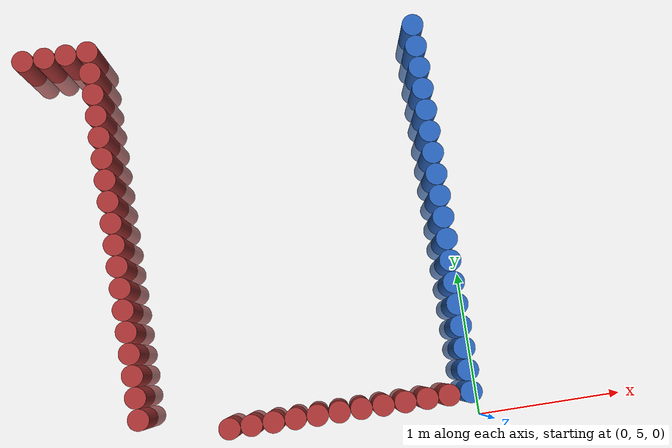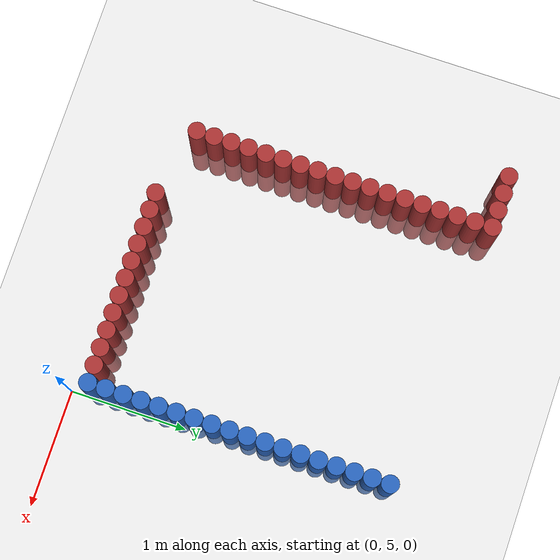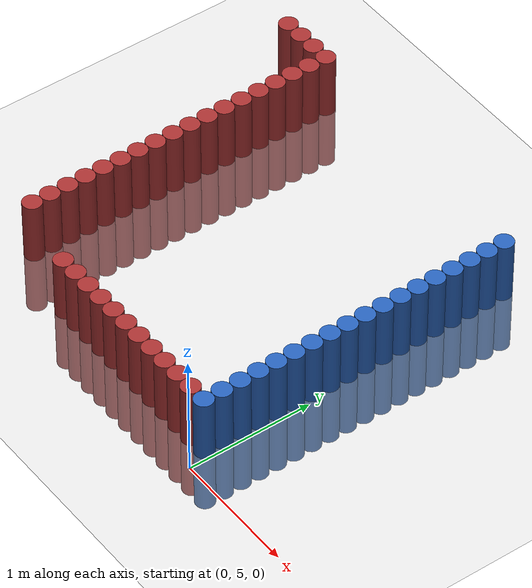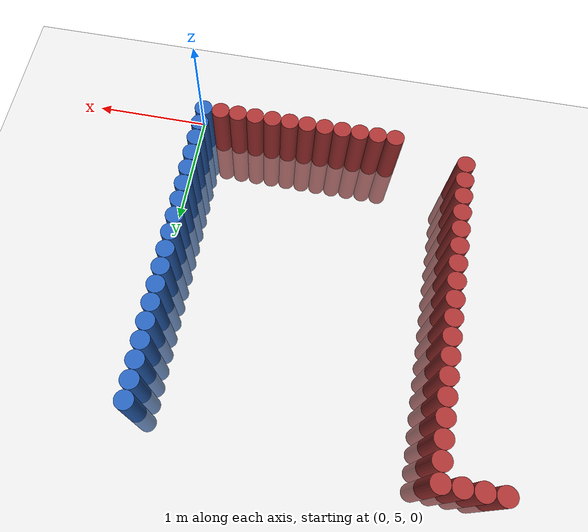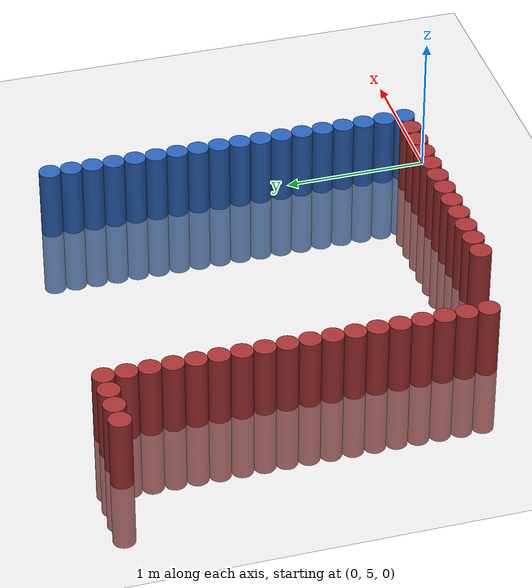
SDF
<sdf version="1.6">
 <world name="default">
  <model name="ground_plane">
   <static>1</static>
   <link name="link">
    <collision name="collision">
     <geometry><plane><normal>0 0 1</normal><size>100 100</size></plane></geometry>
     <surface><friction><ode><mu>100</mu><mu2>50</mu2></ode></friction></surface>
    </collision>
    <visual name="visual">
     <cast_shadows>0</cast_shadows>
     <geometry><plane><normal>0 0 1</normal><size>100 100</size></plane></geometry>
     <material>
      <script><uri>file://media/materials/scripts/gazebo.material</uri><name>Gazebo/Grey</name></script>
     </material>
    </visual>
   </link>
  </model>
  <model name="unit_cylinder_265">
   <static>1</static>
   <pose>-2.775000 7.875000 0.000000 0.000000 0.000000 0.000000</pose>
   <link name="link">
    <inertial>
     <mass>1</mass>
     <inertia><ixx>0.145833</ixx><ixy>0</ixy><ixz>0</ixz><iyy>0.145833</iyy><iyz>0</iyz><izz>0.125</izz></inertia>
    </inertial>
    <collision name="collision">
     <geometry><cylinder><radius>0.075000</radius><length>1</length></cylinder></geometry>
    </collision>
    <visual name="visual">
     <geometry><cylinder><radius>0.075000</radius><length>1</length></cylinder></geometry>
     <material>
      <ambient>0.648000 0.192000 0.192000 1</ambient>
      <diffuse>0.648000 0.192000 0.192000 1</diffuse>
     </material>
     <material>
      <script><name>Gazebo/Grey</name><uri>file://media/materials/scripts/gazebo.material</uri></script>
     </material>
    </visual>
   </link>
  </model>
  <model name="unit_cylinder_272">
   <static>1</static>
   <pose>-2.625000 7.875000 0.000000 0.000000 0.000000 0.000000</pose>
   <link name="link">
    <inertial>
     <mass>1</mass>
     <inertia><ixx>0.145833</ixx><ixy>0</ixy><ixz>0</ixz><iyy>0.145833</iyy><iyz>0</iyz><izz>0.125</izz></inertia>
    </inertial>
    <collision name="collision">
     <geometry><cylinder><radius>0.075000</radius><length>1</length></cylinder></geometry>
    </collision>
    <visual name="visual">
     <geometry><cylinder><radius>0.075000</radius><length>1</length></cylinder></geometry>
     <material>
      <ambient>0.648000 0.192000 0.192000 1</ambient>
      <diffuse>0.648000 0.192000 0.192000 1</diffuse>
     </material>
     <material>
      <script><name>Gazebo/Grey</name><uri>file://media/materials/scripts/gazebo.material</uri></script>
     </material>
    </visual>
   </link>
  </model>
  <model name="unit_cylinder_274">
   <static>1</static>
   <pose>-2.475000 7.875000 0.000000 0.000000 0.000000 0.000000</pose>
   <link name="link">
    <inertial>
     <mass>1</mass>
     <inertia><ixx>0.145833</ixx><ixy>0</ixy><ixz>0</ixz><iyy>0.145833</iyy><iyz>0</iyz><izz>0.125</izz></inertia>
    </inertial>
    <collision name="collision">
     <geometry><cylinder><radius>0.075000</radius><length>1</length></cylinder></geometry>
    </collision>
    <visual name="visual">
     <geometry><cylinder><radius>0.075000</radius><length>1</length></cylinder></geometry>
     <material>
      <ambient>0.648000 0.192000 0.192000 1</ambient>
      <diffuse>0.648000 0.192000 0.192000 1</diffuse>
     </material>
     <material>
      <script><name>Gazebo/Grey</name><uri>file://media/materials/scripts/gazebo.material</uri></script>
     </material>
    </visual>
   </link>
  </model>
  <model name="unit_cylinder_277">
   <static>1</static>
   <pose>-2.325000 5.325000 0.000000 0.000000 0.000000 0.000000</pose>
   <link name="link">
    <inertial>
     <mass>1</mass>
     <inertia><ixx>0.145833</ixx><ixy>0</ixy><ixz>0</ixz><iyy>0.145833</iyy><iyz>0</iyz><izz>0.125</izz></inertia>
    </inertial>
    <collision name="collision">
     <geometry><cylinder><radius>0.075000</radius><length>1</length></cylinder></geometry>
    </collision>
    <visual name="visual">
     <geometry><cylinder><radius>0.075000</radius><length>1</length></cylinder></geometry>
     <material>
      <ambient>0.648000 0.192000 0.192000 1</ambient>
      <diffuse>0.648000 0.192000 0.192000 1</diffuse>
     </material>
     <material>
      <script><name>Gazebo/Grey</name><uri>file://media/materials/scripts/gazebo.material</uri></script>
     </material>
    </visual>
   </link>
  </model>
  <model name="unit_cylinder_278">
   <static>1</static>
   <pose>-2.325000 5.475000 0.000000 0.000000 0.000000 0.000000</pose>
   <link name="link">
    <inertial>
     <mass>1</mass>
     <inertia><ixx>0.145833</ixx><ixy>0</ixy><ixz>0</ixz><iyy>0.145833</iyy><iyz>0</iyz><izz>0.125</izz></inertia>
    </inertial>
    <collision name="collision">
     <geometry><cylinder><radius>0.075000</radius><length>1</length></cylinder></geometry>
    </collision>
    <visual name="visual">
     <geometry><cylinder><radius>0.075000</radius><length>1</length></cylinder></geometry>
     <material>
      <ambient>0.648000 0.192000 0.192000 1</ambient>
      <diffuse>0.648000 0.192000 0.192000 1</diffuse>
     </material>
     <material>
      <script><name>Gazebo/Grey</name><uri>file://media/materials/scripts/gazebo.material</uri></script>
     </material>
    </visual>
   </link>
  </model>
  <model name="unit_cylinder_279">
   <static>1</static>
   <pose>-2.325000 5.625000 0.000000 0.000000 0.000000 0.000000</pose>
   <link name="link">
    <inertial>
     <mass>1</mass>
     <inertia><ixx>0.145833</ixx><ixy>0</ixy><ixz>0</ixz><iyy>0.145833</iyy><iyz>0</iyz><izz>0.125</izz></inertia>
    </inertial>
    <collision name="collision">
     <geometry><cylinder><radius>0.075000</radius><length>1</length></cylinder></geometry>
    </collision>
    <visual name="visual">
     <geometry><cylinder><radius>0.075000</radius><length>1</length></cylinder></geometry>
     <material>
      <ambient>0.648000 0.192000 0.192000 1</ambient>
      <diffuse>0.648000 0.192000 0.192000 1</diffuse>
     </material>
     <material>
      <script><name>Gazebo/Grey</name><uri>file://media/materials/scripts/gazebo.material</uri></script>
     </material>
    </visual>
   </link>
  </model>
  <model name="unit_cylinder_280">
   <static>1</static>
   <pose>-2.325000 5.775000 0.000000 0.000000 0.000000 0.000000</pose>
   <link name="link">
    <inertial>
     <mass>1</mass>
     <inertia><ixx>0.145833</ixx><ixy>0</ixy><ixz>0</ixz><iyy>0.145833</iyy><iyz>0</iyz><izz>0.125</izz></inertia>
    </inertial>
    <collision name="collision">
     <geometry><cylinder><radius>0.075000</radius><length>1</length></cylinder></geometry>
    </collision>
    <visual name="visual">
     <geometry><cylinder><radius>0.075000</radius><length>1</length></cylinder></geometry>
     <material>
      <ambient>0.648000 0.192000 0.192000 1</ambient>
      <diffuse>0.648000 0.192000 0.192000 1</diffuse>
     </material>
     <material>
      <script><name>Gazebo/Grey</name><uri>file://media/materials/scripts/gazebo.material</uri></script>
     </material>
    </visual>
   </link>
  </model>
  <model name="unit_cylinder_281">
   <static>1</static>
   <pose>-2.325000 5.925000 0.000000 0.000000 0.000000 0.000000</pose>
   <link name="link">
    <inertial>
     <mass>1</mass>
     <inertia><ixx>0.145833</ixx><ixy>0</ixy><ixz>0</ixz><iyy>0.145833</iyy><iyz>0</iyz><izz>0.125</izz></inertia>
    </inertial>
    <collision name="collision">
     <geometry><cylinder><radius>0.075000</radius><length>1</length></cylinder></geometry>
    </collision>
    <visual name="visual">
     <geometry><cylinder><radius>0.075000</radius><length>1</length></cylinder></geometry>
     <material>
      <ambient>0.648000 0.192000 0.192000 1</ambient>
      <diffuse>0.648000 0.192000 0.192000 1</diffuse>
     </material>
     <material>
      <script><name>Gazebo/Grey</name><uri>file://media/materials/scripts/gazebo.material</uri></script>
     </material>
    </visual>
   </link>
  </model>
  <model name="unit_cylinder_282">
   <static>1</static>
   <pose>-2.325000 6.075000 0.000000 0.000000 0.000000 0.000000</pose>
   <link name="link">
    <inertial>
     <mass>1</mass>
     <inertia><ixx>0.145833</ixx><ixy>0</ixy><ixz>0</ixz><iyy>0.145833</iyy><iyz>0</iyz><izz>0.125</izz></inertia>
    </inertial>
    <collision name="collision">
     <geometry><cylinder><radius>0.075000</radius><length>1</length></cylinder></geometry>
    </collision>
    <visual name="visual">
     <geometry><cylinder><radius>0.075000</radius><length>1</length></cylinder></geometry>
     <material>
      <ambient>0.648000 0.192000 0.192000 1</ambient>
      <diffuse>0.648000 0.192000 0.192000 1</diffuse>
     </material>
     <material>
      <script><name>Gazebo/Grey</name><uri>file://media/materials/scripts/gazebo.material</uri></script>
     </material>
    </visual>
   </link>
  </model>
  <model name="unit_cylinder_283">
   <static>1</static>
   <pose>-2.325000 6.225000 0.000000 0.000000 0.000000 0.000000</pose>
   <link name="link">
    <inertial>
     <mass>1</mass>
     <inertia><ixx>0.145833</ixx><ixy>0</ixy><ixz>0</ixz><iyy>0.145833</iyy><iyz>0</iyz><izz>0.125</izz></inertia>
    </inertial>
    <collision name="collision">
     <geometry><cylinder><radius>0.075000</radius><length>1</length></cylinder></geometry>
    </collision>
    <visual name="visual">
     <geometry><cylinder><radius>0.075000</radius><length>1</length></cylinder></geometry>
     <material>
      <ambient>0.648000 0.192000 0.192000 1</ambient>
      <diffuse>0.648000 0.192000 0.192000 1</diffuse>
     </material>
     <material>
      <script><name>Gazebo/Grey</name><uri>file://media/materials/scripts/gazebo.material</uri></script>
     </material>
    </visual>
   </link>
  </model>
  <model name="unit_cylinder_284">
   <static>1</static>
   <pose>-2.325000 6.375000 0.000000 0.000000 0.000000 0.000000</pose>
   <link name="link">
    <inertial>
     <mass>1</mass>
     <inertia><ixx>0.145833</ixx><ixy>0</ixy><ixz>0</ixz><iyy>0.145833</iyy><iyz>0</iyz><izz>0.125</izz></inertia>
    </inertial>
    <collision name="collision">
     <geometry><cylinder><radius>0.075000</radius><length>1</length></cylinder></geometry>
    </collision>
    <visual name="visual">
     <geometry><cylinder><radius>0.075000</radius><length>1</length></cylinder></geometry>
     <material>
      <ambient>0.648000 0.192000 0.192000 1</ambient>
      <diffuse>0.648000 0.192000 0.192000 1</diffuse>
     </material>
     <material>
      <script><name>Gazebo/Grey</name><uri>file://media/materials/scripts/gazebo.material</uri></script>
     </material>
    </visual>
   </link>
  </model>
  <model name="unit_cylinder_285">
   <static>1</static>
   <pose>-2.325000 6.525000 0.000000 0.000000 0.000000 0.000000</pose>
   <link name="link">
    <inertial>
     <mass>1</mass>
     <inertia><ixx>0.145833</ixx><ixy>0</ixy><ixz>0</ixz><iyy>0.145833</iyy><iyz>0</iyz><izz>0.125</izz></inertia>
    </inertial>
    <collision name="collision">
     <geometry><cylinder><radius>0.075000</radius><length>1</length></cylinder></geometry>
    </collision>
    <visual name="visual">
     <geometry><cylinder><radius>0.075000</radius><length>1</length></cylinder></geometry>
     <material>
      <ambient>0.648000 0.192000 0.192000 1</ambient>
      <diffuse>0.648000 0.192000 0.192000 1</diffuse>
     </material>
     <material>
      <script><name>Gazebo/Grey</name><uri>file://media/materials/scripts/gazebo.material</uri></script>
     </material>
    </visual>
   </link>
  </model>
  <model name="unit_cylinder_286">
   <static>1</static>
   <pose>-2.325000 6.675000 0.000000 0.000000 0.000000 0.000000</pose>
   <link name="link">
    <inertial>
     <mass>1</mass>
     <inertia><ixx>0.145833</ixx><ixy>0</ixy><ixz>0</ixz><iyy>0.145833</iyy><iyz>0</iyz><izz>0.125</izz></inertia>
    </inertial>
    <collision name="collision">
     <geometry><cylinder><radius>0.075000</radius><length>1</length></cylinder></geometry>
    </collision>
    <visual name="visual">
     <geometry><cylinder><radius>0.075000</radius><length>1</length></cylinder></geometry>
     <material>
      <ambient>0.648000 0.192000 0.192000 1</ambient>
      <diffuse>0.648000 0.192000 0.192000 1</diffuse>
     </material>
     <material>
      <script><name>Gazebo/Grey</name><uri>file://media/materials/scripts/gazebo.material</uri></script>
     </material>
    </visual>
   </link>
  </model>
  <model name="unit_cylinder_287">
   <static>1</static>
   <pose>-2.325000 6.825000 0.000000 0.000000 0.000000 0.000000</pose>
   <link name="link">
    <inertial>
     <mass>1</mass>
     <inertia><ixx>0.145833</ixx><ixy>0</ixy><ixz>0</ixz><iyy>0.145833</iyy><iyz>0</iyz><izz>0.125</izz></inertia>
    </inertial>
    <collision name="collision">
     <geometry><cylinder><radius>0.075000</radius><length>1</length></cylinder></geometry>
    </collision>
    <visual name="visual">
     <geometry><cylinder><radius>0.075000</radius><length>1</length></cylinder></geometry>
     <material>
      <ambient>0.648000 0.192000 0.192000 1</ambient>
      <diffuse>0.648000 0.192000 0.192000 1</diffuse>
     </material>
     <material>
      <script><name>Gazebo/Grey</name><uri>file://media/materials/scripts/gazebo.material</uri></script>
     </material>
    </visual>
   </link>
  </model>
  <model name="unit_cylinder_288">
   <static>1</static>
   <pose>-2.325000 6.975000 0.000000 0.000000 0.000000 0.000000</pose>
   <link name="link">
    <inertial>
     <mass>1</mass>
     <inertia><ixx>0.145833</ixx><ixy>0</ixy><ixz>0</ixz><iyy>0.145833</iyy><iyz>0</iyz><izz>0.125</izz></inertia>
    </inertial>
    <collision name="collision">
     <geometry><cylinder><radius>0.075000</radius><length>1</length></cylinder></geometry>
    </collision>
    <visual name="visual">
     <geometry><cylinder><radius>0.075000</radius><length>1</length></cylinder></geometry>
     <material>
      <ambient>0.648000 0.192000 0.192000 1</ambient>
      <diffuse>0.648000 0.192000 0.192000 1</diffuse>
     </material>
     <material>
      <script><name>Gazebo/Grey</name><uri>file://media/materials/scripts/gazebo.material</uri></script>
     </material>
    </visual>
   </link>
  </model>
  <model name="unit_cylinder_289">
   <static>1</static>
   <pose>-2.325000 7.125000 0.000000 0.000000 0.000000 0.000000</pose>
   <link name="link">
    <inertial>
     <mass>1</mass>
     <inertia><ixx>0.145833</ixx><ixy>0</ixy><ixz>0</ixz><iyy>0.145833</iyy><iyz>0</iyz><izz>0.125</izz></inertia>
    </inertial>
    <collision name="collision">
     <geometry><cylinder><radius>0.075000</radius><length>1</length></cylinder></geometry>
    </collision>
    <visual name="visual">
     <geometry><cylinder><radius>0.075000</radius><length>1</length></cylinder></geometry>
     <material>
      <ambient>0.648000 0.192000 0.192000 1</ambient>
      <diffuse>0.648000 0.192000 0.192000 1</diffuse>
     </material>
     <material>
      <script><name>Gazebo/Grey</name><uri>file://media/materials/scripts/gazebo.material</uri></script>
     </material>
    </visual>
   </link>
  </model>
  <model name="unit_cylinder_290">
   <static>1</static>
   <pose>-2.325000 7.275000 0.000000 0.000000 0.000000 0.000000</pose>
   <link name="link">
    <inertial>
     <mass>1</mass>
     <inertia><ixx>0.145833</ixx><ixy>0</ixy><ixz>0</ixz><iyy>0.145833</iyy><iyz>0</iyz><izz>0.125</izz></inertia>
    </inertial>
    <collision name="collision">
     <geometry><cylinder><radius>0.075000</radius><length>1</length></cylinder></geometry>
    </collision>
    <visual name="visual">
     <geometry><cylinder><radius>0.075000</radius><length>1</length></cylinder></geometry>
     <material>
      <ambient>0.648000 0.192000 0.192000 1</ambient>
      <diffuse>0.648000 0.192000 0.192000 1</diffuse>
     </material>
     <material>
      <script><name>Gazebo/Grey</name><uri>file://media/materials/scripts/gazebo.material</uri></script>
     </material>
    </visual>
   </link>
  </model>
  <model name="unit_cylinder_291">
   <static>1</static>
   <pose>-2.325000 7.425000 0.000000 0.000000 0.000000 0.000000</pose>
   <link name="link">
    <inertial>
     <mass>1</mass>
     <inertia><ixx>0.145833</ixx><ixy>0</ixy><ixz>0</ixz><iyy>0.145833</iyy><iyz>0</iyz><izz>0.125</izz></inertia>
    </inertial>
    <collision name="collision">
     <geometry><cylinder><radius>0.075000</radius><length>1</length></cylinder></geometry>
    </collision>
    <visual name="visual">
     <geometry><cylinder><radius>0.075000</radius><length>1</length></cylinder></geometry>
     <material>
      <ambient>0.648000 0.192000 0.192000 1</ambient>
      <diffuse>0.648000 0.192000 0.192000 1</diffuse>
     </material>
     <material>
      <script><name>Gazebo/Grey</name><uri>file://media/materials/scripts/gazebo.material</uri></script>
     </material>
    </visual>
   </link>
  </model>
  <model name="unit_cylinder_292">
   <static>1</static>
   <pose>-2.325000 7.575000 0.000000 0.000000 0.000000 0.000000</pose>
   <link name="link">
    <inertial>
     <mass>1</mass>
     <inertia><ixx>0.145833</ixx><ixy>0</ixy><ixz>0</ixz><iyy>0.145833</iyy><iyz>0</iyz><izz>0.125</izz></inertia>
    </inertial>
    <collision name="collision">
     <geometry><cylinder><radius>0.075000</radius><length>1</length></cylinder></geometry>
    </collision>
    <visual name="visual">
     <geometry><cylinder><radius>0.075000</radius><length>1</length></cylinder></geometry>
     <material>
      <ambient>0.648000 0.192000 0.192000 1</ambient>
      <diffuse>0.648000 0.192000 0.192000 1</diffuse>
     </material>
     <material>
      <script><name>Gazebo/Grey</name><uri>file://media/materials/scripts/gazebo.material</uri></script>
     </material>
    </visual>
   </link>
  </model>
  <model name="unit_cylinder_293">
   <static>1</static>
   <pose>-2.325000 7.725000 0.000000 0.000000 0.000000 0.000000</pose>
   <link name="link">
    <inertial>
     <mass>1</mass>
     <inertia><ixx>0.145833</ixx><ixy>0</ixy><ixz>0</ixz><iyy>0.145833</iyy><iyz>0</iyz><izz>0.125</izz></inertia>
    </inertial>
    <collision name="collision">
     <geometry><cylinder><radius>0.075000</radius><length>1</length></cylinder></geometry>
    </collision>
    <visual name="visual">
     <geometry><cylinder><radius>0.075000</radius><length>1</length></cylinder></geometry>
     <material>
      <ambient>0.648000 0.192000 0.192000 1</ambient>
      <diffuse>0.648000 0.192000 0.192000 1</diffuse>
     </material>
     <material>
      <script><name>Gazebo/Grey</name><uri>file://media/materials/scripts/gazebo.material</uri></script>
     </material>
    </visual>
   </link>
  </model>
  <model name="unit_cylinder_294">
   <static>1</static>
   <pose>-2.325000 7.875000 0.000000 0.000000 0.000000 0.000000</pose>
   <link name="link">
    <inertial>
     <mass>1</mass>
     <inertia><ixx>0.145833</ixx><ixy>0</ixy><ixz>0</ixz><iyy>0.145833</iyy><iyz>0</iyz><izz>0.125</izz></inertia>
    </inertial>
    <collision name="collision">
     <geometry><cylinder><radius>0.075000</radius><length>1</length></cylinder></geometry>
    </collision>
    <visual name="visual">
     <geometry><cylinder><radius>0.075000</radius><length>1</length></cylinder></geometry>
     <material>
      <ambient>0.648000 0.192000 0.192000 1</ambient>
      <diffuse>0.648000 0.192000 0.192000 1</diffuse>
     </material>
     <material>
      <script><name>Gazebo/Grey</name><uri>file://media/materials/scripts/gazebo.material</uri></script>
     </material>
    </visual>
   </link>
  </model>
  <model name="unit_cylinder_302">
   <static>1</static>
   <pose>-1.725000 5.175000 0.000000 0.000000 0.000000 0.000000</pose>
   <link name="link">
    <inertial>
     <mass>1</mass>
     <inertia><ixx>0.145833</ixx><ixy>0</ixy><ixz>0</ixz><iyy>0.145833</iyy><iyz>0</iyz><izz>0.125</izz></inertia>
    </inertial>
    <collision name="collision">
     <geometry><cylinder><radius>0.075000</radius><length>1</length></cylinder></geometry>
    </collision>
    <visual name="visual">
     <geometry><cylinder><radius>0.075000</radius><length>1</length></cylinder></geometry>
     <material>
      <ambient>0.648000 0.192000 0.192000 1</ambient>
      <diffuse>0.648000 0.192000 0.192000 1</diffuse>
     </material>
     <material>
      <script><name>Gazebo/Grey</name><uri>file://media/materials/scripts/gazebo.material</uri></script>
     </material>
    </visual>
   </link>
  </model>
  <model name="unit_cylinder_304">
   <static>1</static>
   <pose>-1.575000 5.175000 0.000000 0.000000 0.000000 0.000000</pose>
   <link name="link">
    <inertial>
     <mass>1</mass>
     <inertia><ixx>0.145833</ixx><ixy>0</ixy><ixz>0</ixz><iyy>0.145833</iyy><iyz>0</iyz><izz>0.125</izz></inertia>
    </inertial>
    <collision name="collision">
     <geometry><cylinder><radius>0.075000</radius><length>1</length></cylinder></geometry>
    </collision>
    <visual name="visual">
     <geometry><cylinder><radius>0.075000</radius><length>1</length></cylinder></geometry>
     <material>
      <ambient>0.648000 0.192000 0.192000 1</ambient>
      <diffuse>0.648000 0.192000 0.192000 1</diffuse>
     </material>
     <material>
      <script><name>Gazebo/Grey</name><uri>file://media/materials/scripts/gazebo.material</uri></script>
     </material>
    </visual>
   </link>
  </model>
  <model name="unit_cylinder_306">
   <static>1</static>
   <pose>-1.425000 5.175000 0.000000 0.000000 0.000000 0.000000</pose>
   <link name="link">
    <inertial>
     <mass>1</mass>
     <inertia><ixx>0.145833</ixx><ixy>0</ixy><ixz>0</ixz><iyy>0.145833</iyy><iyz>0</iyz><izz>0.125</izz></inertia>
    </inertial>
    <collision name="collision">
     <geometry><cylinder><radius>0.075000</radius><length>1</length></cylinder></geometry>
    </collision>
    <visual name="visual">
     <geometry><cylinder><radius>0.075000</radius><length>1</length></cylinder></geometry>
     <material>
      <ambient>0.648000 0.192000 0.192000 1</ambient>
      <diffuse>0.648000 0.192000 0.192000 1</diffuse>
     </material>
     <material>
      <script><name>Gazebo/Grey</name><uri>file://media/materials/scripts/gazebo.material</uri></script>
     </material>
    </visual>
   </link>
  </model>
  <model name="unit_cylinder_308">
   <static>1</static>
   <pose>-1.275000 5.175000 0.000000 0.000000 0.000000 0.000000</pose>
   <link name="link">
    <inertial>
     <mass>1</mass>
     <inertia><ixx>0.145833</ixx><ixy>0</ixy><ixz>0</ixz><iyy>0.145833</iyy><iyz>0</iyz><izz>0.125</izz></inertia>
    </inertial>
    <collision name="collision">
     <geometry><cylinder><radius>0.075000</radius><length>1</length></cylinder></geometry>
    </collision>
    <visual name="visual">
     <geometry><cylinder><radius>0.075000</radius><length>1</length></cylinder></geometry>
     <material>
      <ambient>0.648000 0.192000 0.192000 1</ambient>
      <diffuse>0.648000 0.192000 0.192000 1</diffuse>
     </material>
     <material>
      <script><name>Gazebo/Grey</name><uri>file://media/materials/scripts/gazebo.material</uri></script>
     </material>
    </visual>
   </link>
  </model>
  <model name="unit_cylinder_310">
   <static>1</static>
   <pose>-1.125000 5.175000 0.000000 0.000000 0.000000 0.000000</pose>
   <link name="link">
    <inertial>
     <mass>1</mass>
     <inertia><ixx>0.145833</ixx><ixy>0</ixy><ixz>0</ixz><iyy>0.145833</iyy><iyz>0</iyz><izz>0.125</izz></inertia>
    </inertial>
    <collision name="collision">
     <geometry><cylinder><radius>0.075000</radius><length>1</length></cylinder></geometry>
    </collision>
    <visual name="visual">
     <geometry><cylinder><radius>0.075000</radius><length>1</length></cylinder></geometry>
     <material>
      <ambient>0.648000 0.192000 0.192000 1</ambient>
      <diffuse>0.648000 0.192000 0.192000 1</diffuse>
     </material>
     <material>
      <script><name>Gazebo/Grey</name><uri>file://media/materials/scripts/gazebo.material</uri></script>
     </material>
    </visual>
   </link>
  </model>
  <model name="unit_cylinder_312">
   <static>1</static>
   <pose>-0.975000 5.175000 0.000000 0.000000 0.000000 0.000000</pose>
   <link name="link">
    <inertial>
     <mass>1</mass>
     <inertia><ixx>0.145833</ixx><ixy>0</ixy><ixz>0</ixz><iyy>0.145833</iyy><iyz>0</iyz><izz>0.125</izz></inertia>
    </inertial>
    <collision name="collision">
     <geometry><cylinder><radius>0.075000</radius><length>1</length></cylinder></geometry>
    </collision>
    <visual name="visual">
     <geometry><cylinder><radius>0.075000</radius><length>1</length></cylinder></geometry>
     <material>
      <ambient>0.648000 0.192000 0.192000 1</ambient>
      <diffuse>0.648000 0.192000 0.192000 1</diffuse>
     </material>
     <material>
      <script><name>Gazebo/Grey</name><uri>file://media/materials/scripts/gazebo.material</uri></script>
     </material>
    </visual>
   </link>
  </model>
  <model name="unit_cylinder_314">
   <static>1</static>
   <pose>-0.825000 5.175000 0.000000 0.000000 0.000000 0.000000</pose>
   <link name="link">
    <inertial>
     <mass>1</mass>
     <inertia><ixx>0.145833</ixx><ixy>0</ixy><ixz>0</ixz><iyy>0.145833</iyy><iyz>0</iyz><izz>0.125</izz></inertia>
    </inertial>
    <collision name="collision">
     <geometry><cylinder><radius>0.075000</radius><length>1</length></cylinder></geometry>
    </collision>
    <visual name="visual">
     <geometry><cylinder><radius>0.075000</radius><length>1</length></cylinder></geometry>
     <material>
      <ambient>0.648000 0.192000 0.192000 1</ambient>
      <diffuse>0.648000 0.192000 0.192000 1</diffuse>
     </material>
     <material>
      <script><name>Gazebo/Grey</name><uri>file://media/materials/scripts/gazebo.material</uri></script>
     </material>
    </visual>
   </link>
  </model>
  <model name="unit_cylinder_316">
   <static>1</static>
   <pose>-0.675000 5.175000 0.000000 0.000000 0.000000 0.000000</pose>
   <link name="link">
    <inertial>
     <mass>1</mass>
     <inertia><ixx>0.145833</ixx><ixy>0</ixy><ixz>0</ixz><iyy>0.145833</iyy><iyz>0</iyz><izz>0.125</izz></inertia>
    </inertial>
    <collision name="collision">
     <geometry><cylinder><radius>0.075000</radius><length>1</length></cylinder></geometry>
    </collision>
    <visual name="visual">
     <geometry><cylinder><radius>0.075000</radius><length>1</length></cylinder></geometry>
     <material>
      <ambient>0.648000 0.192000 0.192000 1</ambient>
      <diffuse>0.648000 0.192000 0.192000 1</diffuse>
     </material>
     <material>
      <script><name>Gazebo/Grey</name><uri>file://media/materials/scripts/gazebo.material</uri></script>
     </material>
    </visual>
   </link>
  </model>
  <model name="unit_cylinder_318">
   <static>1</static>
   <pose>-0.525000 5.175000 0.000000 0.000000 0.000000 0.000000</pose>
   <link name="link">
    <inertial>
     <mass>1</mass>
     <inertia><ixx>0.145833</ixx><ixy>0</ixy><ixz>0</ixz><iyy>0.145833</iyy><iyz>0</iyz><izz>0.125</izz></inertia>
    </inertial>
    <collision name="collision">
     <geometry><cylinder><radius>0.075000</radius><length>1</length></cylinder></geometry>
    </collision>
    <visual name="visual">
     <geometry><cylinder><radius>0.075000</radius><length>1</length></cylinder></geometry>
     <material>
      <ambient>0.648000 0.192000 0.192000 1</ambient>
      <diffuse>0.648000 0.192000 0.192000 1</diffuse>
     </material>
     <material>
      <script><name>Gazebo/Grey</name><uri>file://media/materials/scripts/gazebo.material</uri></script>
     </material>
    </visual>
   </link>
  </model>
  <model name="unit_cylinder_320">
   <static>1</static>
   <pose>-0.375000 5.175000 0.000000 0.000000 0.000000 0.000000</pose>
   <link name="link">
    <inertial>
     <mass>1</mass>
     <inertia><ixx>0.145833</ixx><ixy>0</ixy><ixz>0</ixz><iyy>0.145833</iyy><iyz>0</iyz><izz>0.125</izz></inertia>
    </inertial>
    <collision name="collision">
     <geometry><cylinder><radius>0.075000</radius><length>1</length></cylinder></geometry>
    </collision>
    <visual name="visual">
     <geometry><cylinder><radius>0.075000</radius><length>1</length></cylinder></geometry>
     <material>
      <ambient>0.648000 0.192000 0.192000 1</ambient>
      <diffuse>0.648000 0.192000 0.192000 1</diffuse>
     </material>
     <material>
      <script><name>Gazebo/Grey</name><uri>file://media/materials/scripts/gazebo.material</uri></script>
     </material>
    </visual>
   </link>
  </model>
  <model name="unit_cylinder_322">
   <static>1</static>
   <pose>-0.225000 5.175000 0.000000 0.000000 0.000000 0.000000</pose>
   <link name="link">
    <inertial>
     <mass>1</mass>
     <inertia><ixx>0.145833</ixx><ixy>0</ixy><ixz>0</ixz><iyy>0.145833</iyy><iyz>0</iyz><izz>0.125</izz></inertia>
    </inertial>
    <collision name="collision">
     <geometry><cylinder><radius>0.075000</radius><length>1</length></cylinder></geometry>
    </collision>
    <visual name="visual">
     <geometry><cylinder><radius>0.075000</radius><length>1</length></cylinder></geometry>
     <material>
      <ambient>0.648000 0.192000 0.192000 1</ambient>
      <diffuse>0.648000 0.192000 0.192000 1</diffuse>
     </material>
     <material>
      <script><name>Gazebo/Grey</name><uri>file://media/materials/scripts/gazebo.material</uri></script>
     </material>
    </visual>
   </link>
  </model>
  <model name="unit_cylinder_324">
   <static>1</static>
   <pose>-0.075000 5.175000 0.000000 0.000000 0.000000 0.000000</pose>
   <link name="link">
    <inertial>
     <mass>1</mass>
     <inertia><ixx>0.145833</ixx><ixy>0</ixy><ixz>0</ixz><iyy>0.145833</iyy><iyz>0</iyz><izz>0.125</izz></inertia>
    </inertial>
    <collision name="collision">
     <geometry><cylinder><radius>0.075000</radius><length>1</length></cylinder></geometry>
    </collision>
    <visual name="visual">
     <geometry><cylinder><radius>0.075000</radius><length>1</length></cylinder></geometry>
     <material>
      <ambient>0.152000 0.379000 0.720000 1</ambient>
      <diffuse>0.152000 0.379000 0.720000 1</diffuse>
     </material>
     <material>
      <script><name>Gazebo/Grey</name><uri>file://media/materials/scripts/gazebo.material</uri></script>
     </material>
    </visual>
   </link>
  </model>
  <model name="unit_cylinder_325">
   <static>1</static>
   <pose>-0.075000 5.325000 0.000000 0.000000 0.000000 0.000000</pose>
   <link name="link">
    <inertial>
     <mass>1</mass>
     <inertia><ixx>0.145833</ixx><ixy>0</ixy><ixz>0</ixz><iyy>0.145833</iyy><iyz>0</iyz><izz>0.125</izz></inertia>
    </inertial>
    <collision name="collision">
     <geometry><cylinder><radius>0.075000</radius><length>1</length></cylinder></geometry>
    </collision>
    <visual name="visual">
     <geometry><cylinder><radius>0.075000</radius><length>1</length></cylinder></geometry>
     <material>
      <ambient>0.152000 0.379000 0.720000 1</ambient>
      <diffuse>0.152000 0.379000 0.720000 1</diffuse>
     </material>
     <material>
      <script><name>Gazebo/Grey</name><uri>file://media/materials/scripts/gazebo.material</uri></script>
     </material>
    </visual>
   </link>
  </model>
  <model name="unit_cylinder_326">
   <static>1</static>
   <pose>-0.075000 5.475000 0.000000 0.000000 0.000000 0.000000</pose>
   <link name="link">
    <inertial>
     <mass>1</mass>
     <inertia><ixx>0.145833</ixx><ixy>0</ixy><ixz>0</ixz><iyy>0.145833</iyy><iyz>0</iyz><izz>0.125</izz></inertia>
    </inertial>
    <collision name="collision">
     <geometry><cylinder><radius>0.075000</radius><length>1</length></cylinder></geometry>
    </collision>
    <visual name="visual">
     <geometry><cylinder><radius>0.075000</radius><length>1</length></cylinder></geometry>
     <material>
      <ambient>0.152000 0.379000 0.720000 1</ambient>
      <diffuse>0.152000 0.379000 0.720000 1</diffuse>
     </material>
     <material>
      <script><name>Gazebo/Grey</name><uri>file://media/materials/scripts/gazebo.material</uri></script>
     </material>
    </visual>
   </link>
  </model>
  <model name="unit_cylinder_327">
   <static>1</static>
   <pose>-0.075000 5.625000 0.000000 0.000000 0.000000 0.000000</pose>
   <link name="link">
    <inertial>
     <mass>1</mass>
     <inertia><ixx>0.145833</ixx><ixy>0</ixy><ixz>0</ixz><iyy>0.145833</iyy><iyz>0</iyz><izz>0.125</izz></inertia>
    </inertial>
    <collision name="collision">
     <geometry><cylinder><radius>0.075000</radius><length>1</length></cylinder></geometry>
    </collision>
    <visual name="visual">
     <geometry><cylinder><radius>0.075000</radius><length>1</length></cylinder></geometry>
     <material>
      <ambient>0.152000 0.379000 0.720000 1</ambient>
      <diffuse>0.152000 0.379000 0.720000 1</diffuse>
     </material>
     <material>
      <script><name>Gazebo/Grey</name><uri>file://media/materials/scripts/gazebo.material</uri></script>
     </material>
    </visual>
   </link>
  </model>
  <model name="unit_cylinder_328">
   <static>1</static>
   <pose>-0.075000 5.775000 0.000000 0.000000 0.000000 0.000000</pose>
   <link name="link">
    <inertial>
     <mass>1</mass>
     <inertia><ixx>0.145833</ixx><ixy>0</ixy><ixz>0</ixz><iyy>0.145833</iyy><iyz>0</iyz><izz>0.125</izz></inertia>
    </inertial>
    <collision name="collision">
     <geometry><cylinder><radius>0.075000</radius><length>1</length></cylinder></geometry>
    </collision>
    <visual name="visual">
     <geometry><cylinder><radius>0.075000</radius><length>1</length></cylinder></geometry>
     <material>
      <ambient>0.152000 0.379000 0.720000 1</ambient>
      <diffuse>0.152000 0.379000 0.720000 1</diffuse>
     </material>
     <material>
      <script><name>Gazebo/Grey</name><uri>file://media/materials/scripts/gazebo.material</uri></script>
     </material>
    </visual>
   </link>
  </model>
  <model name="unit_cylinder_329">
   <static>1</static>
   <pose>-0.075000 5.925000 0.000000 0.000000 0.000000 0.000000</pose>
   <link name="link">
    <inertial>
     <mass>1</mass>
     <inertia><ixx>0.145833</ixx><ixy>0</ixy><ixz>0</ixz><iyy>0.145833</iyy><iyz>0</iyz><izz>0.125</izz></inertia>
    </inertial>
    <collision name="collision">
     <geometry><cylinder><radius>0.075000</radius><length>1</length></cylinder></geometry>
    </collision>
    <visual name="visual">
     <geometry><cylinder><radius>0.075000</radius><length>1</length></cylinder></geometry>
     <material>
      <ambient>0.152000 0.379000 0.720000 1</ambient>
      <diffuse>0.152000 0.379000 0.720000 1</diffuse>
     </material>
     <material>
      <script><name>Gazebo/Grey</name><uri>file://media/materials/scripts/gazebo.material</uri></script>
     </material>
    </visual>
   </link>
  </model>
  <model name="unit_cylinder_330">
   <static>1</static>
   <pose>-0.075000 6.075000 0.000000 0.000000 0.000000 0.000000</pose>
   <link name="link">
    <inertial>
     <mass>1</mass>
     <inertia><ixx>0.145833</ixx><ixy>0</ixy><ixz>0</ixz><iyy>0.145833</iyy><iyz>0</iyz><izz>0.125</izz></inertia>
    </inertial>
    <collision name="collision">
     <geometry><cylinder><radius>0.075000</radius><length>1</length></cylinder></geometry>
    </collision>
    <visual name="visual">
     <geometry><cylinder><radius>0.075000</radius><length>1</length></cylinder></geometry>
     <material>
      <ambient>0.152000 0.379000 0.720000 1</ambient>
      <diffuse>0.152000 0.379000 0.720000 1</diffuse>
     </material>
     <material>
      <script><name>Gazebo/Grey</name><uri>file://media/materials/scripts/gazebo.material</uri></script>
     </material>
    </visual>
   </link>
  </model>
  <model name="unit_cylinder_331">
   <static>1</static>
   <pose>-0.075000 6.225000 0.000000 0.000000 0.000000 0.000000</pose>
   <link name="link">
    <inertial>
     <mass>1</mass>
     <inertia><ixx>0.145833</ixx><ixy>0</ixy><ixz>0</ixz><iyy>0.145833</iyy><iyz>0</iyz><izz>0.125</izz></inertia>
    </inertial>
    <collision name="collision">
     <geometry><cylinder><radius>0.075000</radius><length>1</length></cylinder></geometry>
    </collision>
    <visual name="visual">
     <geometry><cylinder><radius>0.075000</radius><length>1</length></cylinder></geometry>
     <material>
      <ambient>0.152000 0.379000 0.720000 1</ambient>
      <diffuse>0.152000 0.379000 0.720000 1</diffuse>
     </material>
     <material>
      <script><name>Gazebo/Grey</name><uri>file://media/materials/scripts/gazebo.material</uri></script>
     </material>
    </visual>
   </link>
  </model>
  <model name="unit_cylinder_332">
   <static>1</static>
   <pose>-0.075000 6.375000 0.000000 0.000000 0.000000 0.000000</pose>
   <link name="link">
    <inertial>
     <mass>1</mass>
     <inertia><ixx>0.145833</ixx><ixy>0</ixy><ixz>0</ixz><iyy>0.145833</iyy><iyz>0</iyz><izz>0.125</izz></inertia>
    </inertial>
    <collision name="collision">
     <geometry><cylinder><radius>0.075000</radius><length>1</length></cylinder></geometry>
    </collision>
    <visual name="visual">
     <geometry><cylinder><radius>0.075000</radius><length>1</length></cylinder></geometry>
     <material>
      <ambient>0.152000 0.379000 0.720000 1</ambient>
      <diffuse>0.152000 0.379000 0.720000 1</diffuse>
     </material>
     <material>
      <script><name>Gazebo/Grey</name><uri>file://media/materials/scripts/gazebo.material</uri></script>
     </material>
    </visual>
   </link>
  </model>
  <model name="unit_cylinder_333">
   <static>1</static>
   <pose>-0.075000 6.525000 0.000000 0.000000 0.000000 0.000000</pose>
   <link name="link">
    <inertial>
     <mass>1</mass>
     <inertia><ixx>0.145833</ixx><ixy>0</ixy><ixz>0</ixz><iyy>0.145833</iyy><iyz>0</iyz><izz>0.125</izz></inertia>
    </inertial>
    <collision name="collision">
     <geometry><cylinder><radius>0.075000</radius><length>1</length></cylinder></geometry>
    </collision>
    <visual name="visual">
     <geometry><cylinder><radius>0.075000</radius><length>1</length></cylinder></geometry>
     <material>
      <ambient>0.152000 0.379000 0.720000 1</ambient>
      <diffuse>0.152000 0.379000 0.720000 1</diffuse>
     </material>
     <material>
      <script><name>Gazebo/Grey</name><uri>file://media/materials/scripts/gazebo.material</uri></script>
     </material>
    </visual>
   </link>
  </model>
  <model name="unit_cylinder_334">
   <static>1</static>
   <pose>-0.075000 6.675000 0.000000 0.000000 0.000000 0.000000</pose>
   <link name="link">
    <inertial>
     <mass>1</mass>
     <inertia><ixx>0.145833</ixx><ixy>0</ixy><ixz>0</ixz><iyy>0.145833</iyy><iyz>0</iyz><izz>0.125</izz></inertia>
    </inertial>
    <collision name="collision">
     <geometry><cylinder><radius>0.075000</radius><length>1</length></cylinder></geometry>
    </collision>
    <visual name="visual">
     <geometry><cylinder><radius>0.075000</radius><length>1</length></cylinder></geometry>
     <material>
      <ambient>0.152000 0.379000 0.720000 1</ambient>
      <diffuse>0.152000 0.379000 0.720000 1</diffuse>
     </material>
     <material>
      <script><name>Gazebo/Grey</name><uri>file://media/materials/scripts/gazebo.material</uri></script>
     </material>
    </visual>
   </link>
  </model>
  <model name="unit_cylinder_335">
   <static>1</static>
   <pose>-0.075000 6.825000 0.000000 0.000000 0.000000 0.000000</pose>
   <link name="link">
    <inertial>
     <mass>1</mass>
     <inertia><ixx>0.145833</ixx><ixy>0</ixy><ixz>0</ixz><iyy>0.145833</iyy><iyz>0</iyz><izz>0.125</izz></inertia>
    </inertial>
    <collision name="collision">
     <geometry><cylinder><radius>0.075000</radius><length>1</length></cylinder></geometry>
    </collision>
    <visual name="visual">
     <geometry><cylinder><radius>0.075000</radius><length>1</length></cylinder></geometry>
     <material>
      <ambient>0.152000 0.379000 0.720000 1</ambient>
      <diffuse>0.152000 0.379000 0.720000 1</diffuse>
     </material>
     <material>
      <script><name>Gazebo/Grey</name><uri>file://media/materials/scripts/gazebo.material</uri></script>
     </material>
    </visual>
   </link>
  </model>
  <model name="unit_cylinder_336">
   <static>1</static>
   <pose>-0.075000 6.975000 0.000000 0.000000 0.000000 0.000000</pose>
   <link name="link">
    <inertial>
     <mass>1</mass>
     <inertia><ixx>0.145833</ixx><ixy>0</ixy><ixz>0</ixz><iyy>0.145833</iyy><iyz>0</iyz><izz>0.125</izz></inertia>
    </inertial>
    <collision name="collision">
     <geometry><cylinder><radius>0.075000</radius><length>1</length></cylinder></geometry>
    </collision>
    <visual name="visual">
     <geometry><cylinder><radius>0.075000</radius><length>1</length></cylinder></geometry>
     <material>
      <ambient>0.152000 0.379000 0.720000 1</ambient>
      <diffuse>0.152000 0.379000 0.720000 1</diffuse>
     </material>
     <material>
      <script><name>Gazebo/Grey</name><uri>file://media/materials/scripts/gazebo.material</uri></script>
     </material>
    </visual>
   </link>
  </model>
  <model name="unit_cylinder_337">
   <static>1</static>
   <pose>-0.075000 7.125000 0.000000 0.000000 0.000000 0.000000</pose>
   <link name="link">
    <inertial>
     <mass>1</mass>
     <inertia><ixx>0.145833</ixx><ixy>0</ixy><ixz>0</ixz><iyy>0.145833</iyy><iyz>0</iyz><izz>0.125</izz></inertia>
    </inertial>
    <collision name="collision">
     <geometry><cylinder><radius>0.075000</radius><length>1</length></cylinder></geometry>
    </collision>
    <visual name="visual">
     <geometry><cylinder><radius>0.075000</radius><length>1</length></cylinder></geometry>
     <material>
      <ambient>0.152000 0.379000 0.720000 1</ambient>
      <diffuse>0.152000 0.379000 0.720000 1</diffuse>
     </material>
     <material>
      <script><name>Gazebo/Grey</name><uri>file://media/materials/scripts/gazebo.material</uri></script>
     </material>
    </visual>
   </link>
  </model>
  <model name="unit_cylinder_338">
   <static>1</static>
   <pose>-0.075000 7.275000 0.000000 0.000000 0.000000 0.000000</pose>
   <link name="link">
    <inertial>
     <mass>1</mass>
     <inertia><ixx>0.145833</ixx><ixy>0</ixy><ixz>0</ixz><iyy>0.145833</iyy><iyz>0</iyz><izz>0.125</izz></inertia>
    </inertial>
    <collision name="collision">
     <geometry><cylinder><radius>0.075000</radius><length>1</length></cylinder></geometry>
    </collision>
    <visual name="visual">
     <geometry><cylinder><radius>0.075000</radius><length>1</length></cylinder></geometry>
     <material>
      <ambient>0.152000 0.379000 0.720000 1</ambient>
      <diffuse>0.152000 0.379000 0.720000 1</diffuse>
     </material>
     <material>
      <script><name>Gazebo/Grey</name><uri>file://media/materials/scripts/gazebo.material</uri></script>
     </material>
    </visual>
   </link>
  </model>
  <model name="unit_cylinder_339">
   <static>1</static>
   <pose>-0.075000 7.425000 0.000000 0.000000 0.000000 0.000000</pose>
   <link name="link">
    <inertial>
     <mass>1</mass>
     <inertia><ixx>0.145833</ixx><ixy>0</ixy><ixz>0</ixz><iyy>0.145833</iyy><iyz>0</iyz><izz>0.125</izz></inertia>
    </inertial>
    <collision name="collision">
     <geometry><cylinder><radius>0.075000</radius><length>1</length></cylinder></geometry>
    </collision>
    <visual name="visual">
     <geometry><cylinder><radius>0.075000</radius><length>1</length></cylinder></geometry>
     <material>
      <ambient>0.152000 0.379000 0.720000 1</ambient>
      <diffuse>0.152000 0.379000 0.720000 1</diffuse>
     </material>
     <material>
      <script><name>Gazebo/Grey</name><uri>file://media/materials/scripts/gazebo.material</uri></script>
     </material>
    </visual>
   </link>
  </model>
  <model name="unit_cylinder_340">
   <static>1</static>
   <pose>-0.075000 7.575000 0.000000 0.000000 0.000000 0.000000</pose>
   <link name="link">
    <inertial>
     <mass>1</mass>
     <inertia><ixx>0.145833</ixx><ixy>0</ixy><ixz>0</ixz><iyy>0.145833</iyy><iyz>0</iyz><izz>0.125</izz></inertia>
    </inertial>
    <collision name="collision">
     <geometry><cylinder><radius>0.075000</radius><length>1</length></cylinder></geometry>
    </collision>
    <visual name="visual">
     <geometry><cylinder><radius>0.075000</radius><length>1</length></cylinder></geometry>
     <material>
      <ambient>0.152000 0.379000 0.720000 1</ambient>
      <diffuse>0.152000 0.379000 0.720000 1</diffuse>
     </material>
     <material>
      <script><name>Gazebo/Grey</name><uri>file://media/materials/scripts/gazebo.material</uri></script>
     </material>
    </visual>
   </link>
  </model>
  <model name="unit_cylinder_341">
   <static>1</static>
   <pose>-0.075000 7.725000 0.000000 0.000000 0.000000 0.000000</pose>
   <link name="link">
    <inertial>
     <mass>1</mass>
     <inertia><ixx>0.145833</ixx><ixy>0</ixy><ixz>0</ixz><iyy>0.145833</iyy><iyz>0</iyz><izz>0.125</izz></inertia>
    </inertial>
    <collision name="collision">
     <geometry><cylinder><radius>0.075000</radius><length>1</length></cylinder></geometry>
    </collision>
    <visual name="visual">
     <geometry><cylinder><radius>0.075000</radius><length>1</length></cylinder></geometry>
     <material>
      <ambient>0.152000 0.379000 0.720000 1</ambient>
      <diffuse>0.152000 0.379000 0.720000 1</diffuse>
     </material>
     <material>
      <script><name>Gazebo/Grey</name><uri>file://media/materials/scripts/gazebo.material</uri></script>
     </material>
    </visual>
   </link>
  </model>
 </world>
</sdf>
